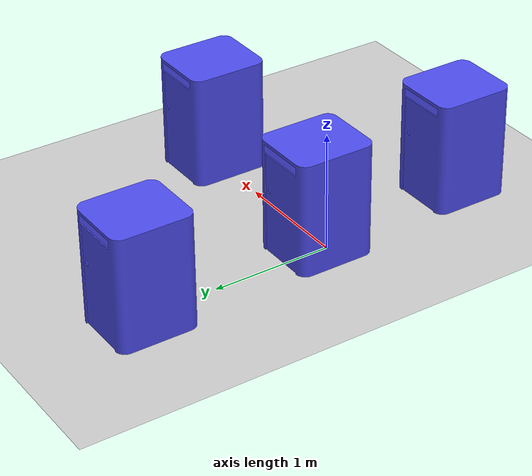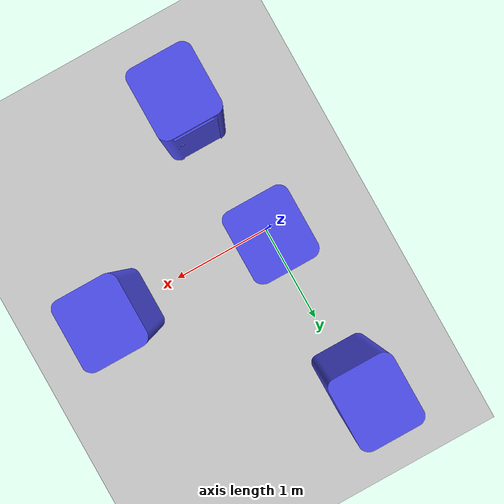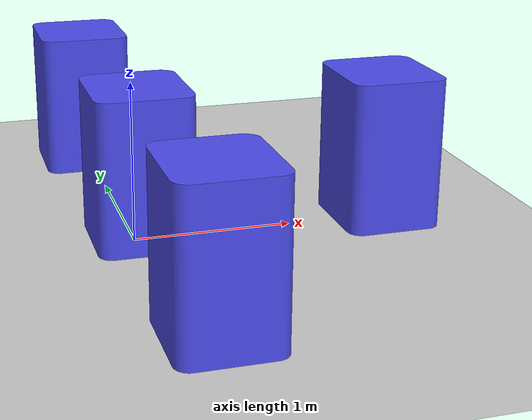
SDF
<sdf version="1.6">
 <world name="default">
  <light name="sun" type="directional">
   <pose>0 0 10 0 -0 0</pose>
   <diffuse>0.8 0.8 0.8 1</diffuse>
   <specular>0.1 0.1 0.1 1</specular>
   <attenuation>
    <range>1000</range>
    <constant>0.9</constant>
    <linear>0.01</linear>
    <quadratic>0.001</quadratic>
   </attenuation>
   <direction>-0.5 0.5 -1</direction>
  </light>
  <model name="ground_plane">
   <static>1</static>
   <link name="link">
    <collision name="collision">
     <geometry><plane><normal>0 0 1</normal><size>100 100</size></plane></geometry>
     <surface><friction><ode><mu>100</mu><mu2>50</mu2></ode></friction></surface>
    </collision>
    <visual name="visual">
     <cast_shadows>0</cast_shadows>
     <geometry><plane><normal>0 0 1</normal><size>100 100</size></plane></geometry>
     <material>
      <script><uri>file://media/materials/scripts/gazebo.material</uri><name>Gazebo/Grey</name></script>
     </material>
    </visual>
   </link>
  </model>
  <gravity>0 0 -9.8</gravity>
  <magnetic_field>6e-06 2.3e-05 -4.2e-05</magnetic_field>
  <atmosphere type="adiabatic"/>
  <physics name="default_physics" default="0" type="ode">
   <max_step_size>0.001</max_step_size>
   <real_time_factor>1</real_time_factor>
   <real_time_update_rate>1000</real_time_update_rate>
  </physics>
  <scene><ambient>0.4 0.4 0.4 1</ambient><background>0.7 0.7 0.7 1</background><shadows>1</shadows></scene>
  <spherical_coordinates>
   <surface_model>EARTH_WGS84</surface_model>
   <latitude_deg>0</latitude_deg>
   <longitude_deg>0</longitude_deg>
   <elevation>0</elevation>
   <heading_deg>0</heading_deg>
  </spherical_coordinates>
  <model name="blue_bin_cuboid">
   <link name="link_0">
    <visual name="visual">
     <geometry><mesh><uri>model://blue_bin_cuboid/meshes/blue_bin.stl</uri><scale>1 1 1</scale></mesh></geometry>
     <material>
      <lighting>1</lighting>
      <ambient>0.074 0.074 0.937 1</ambient>
      <diffuse>0.3 0.3 0.937 1</diffuse>
      <specular>0.01 0.01 0.01 1</specular>
      <emissive>0.01 0.01 0.01 1</emissive>
      <shader type="vertex"><normal_map>__default__</normal_map></shader>
     </material>
    </visual>
    <collision name="collision">
     <geometry><mesh><uri>model://blue_bin_cuboid/meshes/blue_bin.stl</uri><scale>1 1 1</scale></mesh></geometry>
    </collision>
   </link>
   <static>1</static>
   <pose>-0.25657 -0.27325 0 0 -0 0</pose>
  </model>
  <model name="blue_bin_cuboid_0">
   <link name="link_0">
    <visual name="visual">
     <geometry><mesh><uri>model://blue_bin_cuboid/meshes/blue_bin.stl</uri><scale>1 1 1</scale></mesh></geometry>
     <material>
      <lighting>1</lighting>
      <ambient>0.074 0.074 0.937 1</ambient>
      <diffuse>0.3 0.3 0.937 1</diffuse>
      <specular>0.01 0.01 0.01 1</specular>
      <emissive>0.01 0.01 0.01 1</emissive>
      <shader type="vertex"><normal_map>__default__</normal_map></shader>
     </material>
    </visual>
    <collision name="collision">
     <geometry><mesh><uri>model://blue_bin_cuboid/meshes/blue_bin.stl</uri><scale>1 1 1</scale></mesh></geometry>
    </collision>
   </link>
   <static>1</static>
   <pose>1.30483 -0.322652 0 0 -0 0</pose>
  </model>
  <model name="blue_bin_cuboid_1">
   <link name="link_0">
    <visual name="visual">
     <geometry><mesh><uri>model://blue_bin_cuboid/meshes/blue_bin.stl</uri><scale>1 1 1</scale></mesh></geometry>
     <material>
      <lighting>1</lighting>
      <ambient>0.074 0.074 0.937 1</ambient>
      <diffuse>0.3 0.3 0.937 1</diffuse>
      <specular>0.01 0.01 0.01 1</specular>
      <emissive>0.01 0.01 0.01 1</emissive>
      <shader type="vertex"><normal_map>__default__</normal_map></shader>
     </material>
    </visual>
    <collision name="collision">
     <geometry><mesh><uri>model://blue_bin_cuboid/meshes/blue_bin.stl</uri><scale>1 1 1</scale></mesh></geometry>
    </collision>
   </link>
   <static>1</static>
   <pose>-0.139889 -1.67015 0 0 -0 0</pose>
  </model>
  <model name="blue_bin_cuboid_2">
   <link name="link_0">
    <visual name="visual">
     <geometry><mesh><uri>model://blue_bin_cuboid/meshes/blue_bin.stl</uri><scale>1 1 1</scale></mesh></geometry>
     <material>
      <lighting>1</lighting>
      <ambient>0.074 0.074 0.937 1</ambient>
      <diffuse>0.3 0.3 0.937 1</diffuse>
      <specular>0.01 0.01 0.01 1</specular>
      <emissive>0.01 0.01 0.01 1</emissive>
      <shader type="vertex"><normal_map>__default__</normal_map></shader>
     </material>
    </visual>
    <collision name="collision">
     <geometry><mesh><uri>model://blue_bin_cuboid/meshes/blue_bin.stl</uri><scale>1 1 1</scale></mesh></geometry>
    </collision>
   </link>
   <static>1</static>
   <pose>-0.342224 1.3322 0 0 -0 0</pose>
  </model>
 </world>
</sdf>
